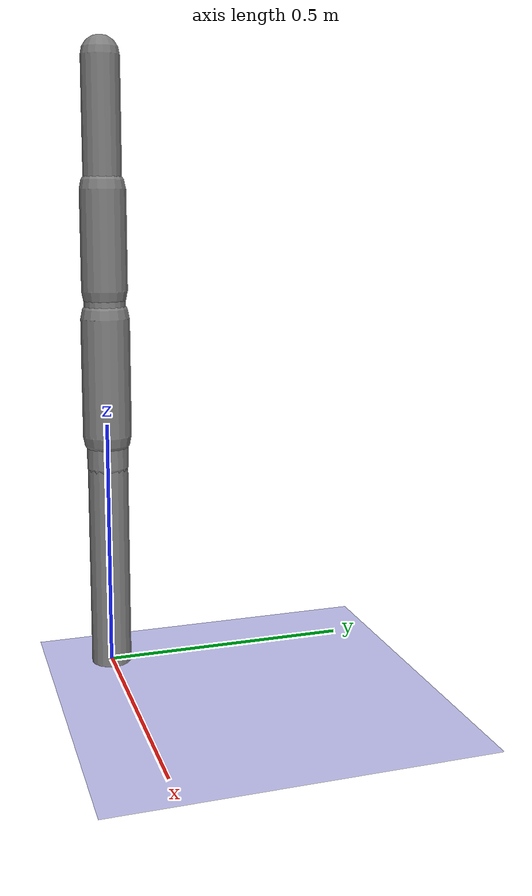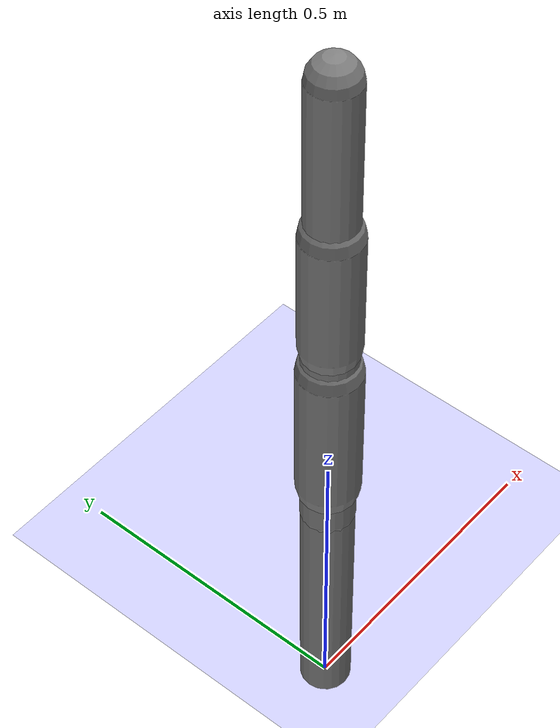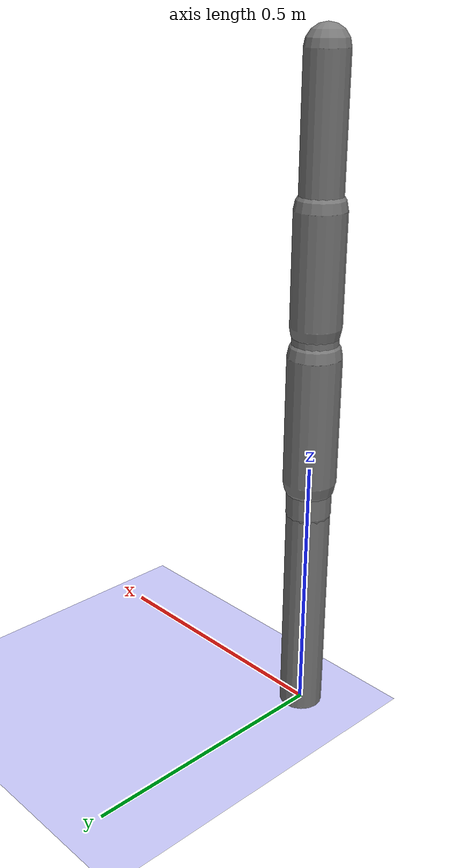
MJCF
<?xml version='1.0' encoding='UTF-8'?>
<mujoco model="robot_model">
  <worldbody>
    <light name="light" pos="0 -3 10" dir="0 0.5 -1" diffuse=".8 .8 .8" specular="0.1 0.1 0.1"/>
    <geom name="floor" type="plane" size="10.0 10.0 0.1" pos="0 0 0" rgba="0.8 0.8 1 1" contype="2" conaffinity="1"/>
    <body name="limb0" pos="0 0 0">
      <geom type="capsule" fromto="0 0 0 0 0 0.5413425794355615" size="0.04089936951777583" density="848.0961785362337" contype="1" conaffinity="2"/>
      <site type="sphere" size="0.01" name="limb0_site0" pos="0 0 0.3123046716206477"/>
      <site type="sphere" size="0.01" name="limb0_site1" pos="0 0 0.5097856393048947"/>
      <freejoint name="limb0_root"/>
      <body name="limb1" pos="0 0 0.3123046716206477">
        <geom type="capsule" fromto="0 0 0 0 0 0.26722524605052234" size="0.035961420853084375" density="684.3522535780868" contype="1" conaffinity="2"/>
        <site type="sphere" size="0.01" name="limb1_site0" pos="0 0 0.16672257441529054"/>
        <site type="sphere" size="0.01" name="limb1_site1" pos="0 0 0.10230398112522134"/>
        <site type="sphere" size="0.01" name="limb1_site2" pos="0 0 0.2052404043384869"/>
        <body name="limb2" pos="0 0 0.16672257441529054">
          <geom type="capsule" fromto="0 0 0 0 0 0.23785756650714102" size="0.049138871714439904" density="645.8772761445443" contype="1" conaffinity="2"/>
          <joint name="joint_limb1_limb2_0" type="hinge" axis="1 0 0" range="-79.09502255685595 79.09502255685595" damping="5.0"/>
        </body>
        <body name="limb3" pos="0 0 0.10230398112522134">
          <geom type="capsule" fromto="0 0 0 0 0 0.3449366956007403" size="0.04182995516077146" density="888.638751137447" contype="1" conaffinity="2"/>
          <site type="sphere" size="0.01" name="limb3_site0" pos="0 0 0.34476469369601037"/>
          <body name="limb4" pos="0 0 0.34476469369601037">
            <geom type="capsule" fromto="0 0 0 0 0 0.4627724458843048" size="0.038315689202147445" density="598.8324428626668" contype="1" conaffinity="2"/>
            <joint name="joint_limb3_limb4_0" type="hinge" axis="0 1 0" range="-97.60316524447805 97.60316524447805" damping="5.0"/>
          </body>
          <joint name="joint_limb1_limb3_0" type="hinge" axis="0 1 0" range="-81.36051586401729 81.36051586401729" damping="5.0"/>
        </body>
        <body name="limb5" pos="0 0 0.2052404043384869">
          <geom type="capsule" fromto="0 0 0 0 0 0.5" size="0.02873141783162973" density="1125.3976062468732" contype="1" conaffinity="2"/>
          <site type="sphere" size="0.01" name="limb5_site0" pos="0 0 0.2532175754470606"/>
          <site type="sphere" size="0.01" name="limb5_site1" pos="0 0 0.2560745598104502"/>
          <body name="limb6" pos="0 0 0.2532175754470606">
            <geom type="capsule" fromto="0 0 0 0 0 0.19942307054689806" size="0.04609395862756084" density="1147.4288306062897" contype="1" conaffinity="2"/>
            <joint name="joint_limb5_limb6_0" type="hinge" axis="0 0 1" range="-90.5097388235382 90.5097388235382" damping="5.0"/>
          </body>
          <body name="limb7" pos="0 0 0.2560745598104502">
            <geom type="capsule" fromto="0 0 0 0 0 0.1797215636428" size="0.026091798513952557" density="745.8119714770129" contype="1" conaffinity="2"/>
            <joint name="joint_limb5_limb7_0" type="hinge" axis="1 0 0" range="-42.15190616583611 42.15190616583611" damping="5.0"/>
          </body>
          <joint name="joint_limb1_limb5_0" type="hinge" axis="0 1 0" range="-80.38696577407528 80.38696577407528" damping="5.0"/>
        </body>
        <joint name="joint_limb0_limb1_0" type="hinge" axis="0 1 0" range="-95.04148937166421 95.04148937166421" damping="5.0"/>
      </body>
      <body name="limb8" pos="0 0 0.5097856393048947">
        <geom type="capsule" fromto="0 0 0 0 0 0.12459660118477343" size="0.048030699364997174" density="1200.0" contype="1" conaffinity="2"/>
        <joint name="joint_limb0_limb8_0" type="hinge" axis="0 1 0" range="-46.186401585393725 46.186401585393725" damping="5.0"/>
      </body>
    </body>
  </worldbody>
  <actuator>
    <position name="position_actuator_joint_limb0_limb1_0" joint="joint_limb0_limb1_0" gear="0.9970691100081875" inheritrange="1" kp="10.0"/>
    <position name="position_actuator_joint_limb1_limb2_0" joint="joint_limb1_limb2_0" gear="1.04539962530611" inheritrange="1" kp="10.0"/>
    <position name="position_actuator_joint_limb1_limb3_0" joint="joint_limb1_limb3_0" gear="2.0" inheritrange="1" kp="10.0"/>
    <position name="position_actuator_joint_limb3_limb4_0" joint="joint_limb3_limb4_0" gear="1.7459471619076385" inheritrange="1" kp="10.0"/>
    <position name="position_actuator_joint_limb1_limb5_0" joint="joint_limb1_limb5_0" gear="1.272740550353963" inheritrange="1" kp="10.0"/>
    <position name="position_actuator_joint_limb5_limb6_0" joint="joint_limb5_limb6_0" gear="1.3981816598475163" inheritrange="1" kp="10.0"/>
    <position name="position_actuator_joint_limb5_limb7_0" joint="joint_limb5_limb7_0" gear="1.5515760021784972" inheritrange="1" kp="10.0"/>
    <position name="position_actuator_joint_limb0_limb8_0" joint="joint_limb0_limb8_0" gear="0.5181521235082891" inheritrange="1" kp="10.0"/>
  </actuator>
</mujoco>
